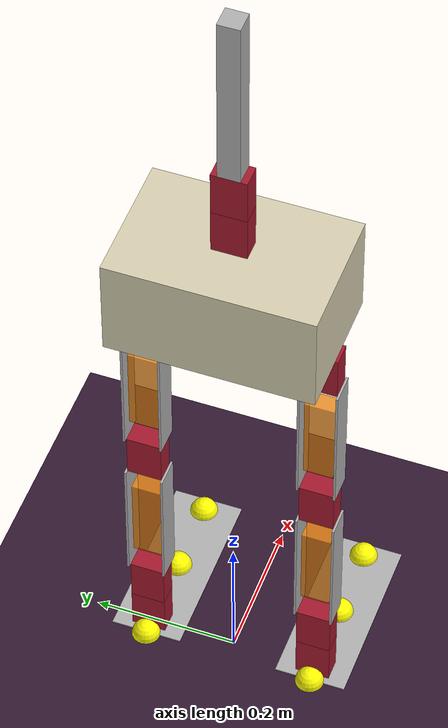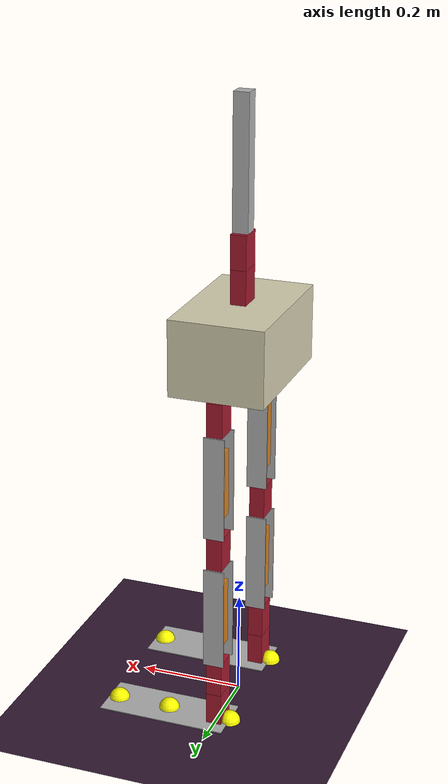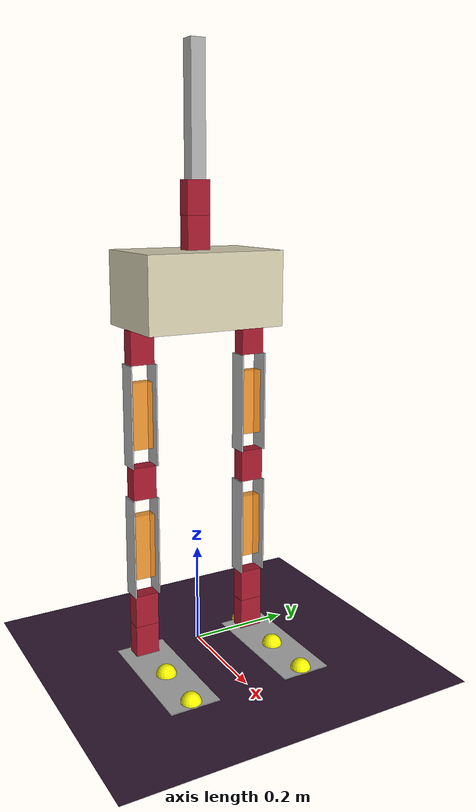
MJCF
<mujoco model="yuuki_robot_biped">

  <default>
    <site size="0.02" rgba="1 1 0 1"/>
    <joint damping="1.5" armature="0.02"/>
    <geom friction="1.15 0.005 0.0001"/>
  </default>

  <visual>
    <global offwidth="1280" offheight="960"/>
  </visual>

  <asset>
    <texture type="skybox" builtin="gradient" rgb1="1 1 1" rgb2=".6 .8 1" width="256" height="256"/>
    <texture name="grid" type="2d" builtin="checker" width="512" height="512" rgb1=".3 .1 .1" rgb2=".1 .1 .3"/>
    <material name="floor_mat" texture="grid" texrepeat="40 40"/>
    <material name="basket" rgba="0.85 0.82 0.7 1"/>
    <material name="servo" rgba="0.65 0.1 0.18 1"/>
    <material name="metal" rgba="0.7 0.7 0.7 1"/>
    <material name="lipo" rgba="0.95 0.55 0.1 0.85"/>
  </asset>

  <worldbody>
    <camera name="track_robot" mode="track" target="basket_thigh" pos="0 -2.6 1.2" fovy="48"/>
    <light pos="0 0 10" dir="0 0 -1" diffuse="0.8 0.8 0.8"/>
    <geom name="floor" type="plane" size="25 25 0.1" material="floor_mat"/>

    <!-- カゴ底面中央 = ルート原点。立位で足底が床に届く高さ -->
    <body name="basket_thigh" pos="0 0 0.66">
      <freejoint name="root"/>
      <site name="imu_site" pos="0 0 0.05"/>

      <!-- カゴ: 幅28cm(Y) × 高14.5cm(Z) × 奥行18cm(X) -->
      <geom name="basket" type="box" pos="0 0 0.0725" size="0.09 0.14 0.0725" material="basket" mass="0.5"/>

      <!-- ========== 上半身バランス棒（設計図2） ========== -->
      <body name="basket_top_roll" pos="0 0 0.145">
        <!-- 先にロール軸（X） -->
        <joint name="basket_top_roll" type="hinge" axis="1 0 0" range="-45 45" damping="2"/>
        <geom name="basket_top_roll_servo" type="box" pos="0 0 0.0325" size="0.015 0.024 0.0325" material="servo" mass="0.18" contype="0" conaffinity="0"/>

        <body name="balance_pitch" pos="0 0 0.065">
          <!-- 次にピッチ軸（Y） -->
          <joint name="balance_pitch" type="hinge" axis="0 1 0" range="-45 45" damping="2"/>
          <geom name="balance_pitch_servo" type="box" pos="0 0 0.0325" size="0.015 0.024 0.0325" material="servo" mass="0.18" contype="0" conaffinity="0"/>

          <!-- バランス棒: 高さ 25cm、断面 3cm x 3cm -->
          <body name="balance_bar" pos="0 0 0.065">
            <geom name="balance_bar" type="box" pos="0 0 0.125" size="0.015 0.015 0.125" material="metal" mass="1.5"/>
          </body>
        </body>
      </body>

      <!-- ========== 左脚 (+Y) ========== -->
      <body name="left_hip" pos="0 0.12 0">
        <!-- 軸: ロール (X) — 背面図は点、側面図は線 -->
        <!-- 股ロール: 実機 LOGICAL_RANGE_HIP1（-30°〜90°） -->
        <joint name="left_hip_roll" type="hinge" axis="1 0 0" range="-30 90" damping="2"/>
        <geom name="left_hip_roll_servo" type="box" pos="0 0 -0.0325" size="0.015 0.024 0.0325" material="servo" mass="0.18" contype="0" conaffinity="0"/>

        <body name="left_thigh" pos="0 0 -0.065">
          <!-- 軸: ピッチ (Y) -->
          <!-- 股ピッチ論理角 -20°〜120° → MuJoCo（論理-90°）-110°〜30° -->
          <joint name="left_hip_pitch" type="hinge" axis="0 1 0" range="-110 30" damping="2"/>
          <!-- 腿板×2: 板面は X-Z、厚み 3mm は Y。サーボ幅 48mm の両脇に配置 -->
          <geom name="left_thigh_plate_outer" type="box" pos="0 0.0255 -0.10" size="0.02 0.0015 0.10" material="metal" mass="0.063"/>
          <geom name="thigh_link" type="box" pos="0 -0.0255 -0.10" size="0.02 0.0015 0.10" material="metal" mass="0.063"/>
          <geom name="left_thigh_lipo" type="box" pos="0 0 -0.10" size="0.012 0.02 0.065" material="lipo" mass="0.302" contype="0" conaffinity="0"/>

          <body name="left_knee" pos="0 0 -0.20">
            <!-- 膝: 真下 0°、後方屈曲 +（論理 0°〜100°） -->
            <joint name="left_knee_pitch" type="hinge" axis="0 1 0" range="0 100" damping="2"/>
            <geom name="left_knee_servo" type="box" pos="0 0 -0.0325" size="0.015 0.024 0.0325" material="servo" mass="0.18" contype="0" conaffinity="0"/>

            <body name="left_shin" pos="0 0 -0.065">
              <geom name="left_shin_plate_outer" type="box" pos="0 0.0255 -0.10" size="0.02 0.0015 0.10" material="metal" mass="0.063"/>
              <geom name="shank_link" type="box" pos="0 -0.0255 -0.10" size="0.02 0.0015 0.10" material="metal" mass="0.063"/>
              <geom name="left_shin_lipo" type="box" pos="0 0 -0.10" size="0.012 0.02 0.065" material="lipo" mass="0.302" contype="0" conaffinity="0"/>

              <body name="left_ankle_pitch" pos="0 0 -0.20">
                <!-- 足首ピッチ: 背屈 -20°、底屈 +90°（論理角） -->
                <joint name="left_ankle_pitch" type="hinge" axis="0 1 0" range="-20 90" damping="2"/>
                <geom name="left_ankle_pitch_servo" type="box" pos="0 0 -0.0325" size="0.015 0.024 0.0325" material="servo" mass="0.18" contype="0" conaffinity="0"/>

                <body name="left_ankle_roll" pos="0 0 -0.065">
                  <joint name="left_ankle_roll" type="hinge" axis="1 0 0" range="-20 20" damping="2"/>
                  <geom name="left_ankle_roll_servo" type="box" pos="0 0 -0.0325" size="0.015 0.024 0.0325" material="servo" mass="0.18" contype="0" conaffinity="0"/>

                  <body name="left_sole" pos="0 0 -0.065">
                    <site name="foot_site" pos="0.10 0 0.001"/>
                    <site name="heel_bottom_site" pos="-0.025 0 0"/>
                    <site name="toe_bottom_site" pos="0.205 0 0"/>
                    <geom name="foot_plate" type="box" pos="0.10 0 0.001" size="0.125 0.05 0.001" material="metal" mass="0.226"/>
                  </body>
                </body>
              </body>
            </body>
          </body>
        </body>
      </body>

      <!-- ========== 右脚 (-Y) ========== -->
      <body name="right_hip" pos="0 -0.12 0">
        <joint name="right_hip_roll" type="hinge" axis="1 0 0" range="-30 90" damping="2"/>
        <geom name="right_hip_roll_servo" type="box" pos="0 0 -0.0325" size="0.015 0.024 0.0325" material="servo" mass="0.18" contype="0" conaffinity="0"/>

        <body name="right_thigh" pos="0 0 -0.065">
          <joint name="right_hip_pitch" type="hinge" axis="0 1 0" range="-110 30" damping="2"/>
          <geom name="right_thigh_plate_outer" type="box" pos="0 -0.0255 -0.10" size="0.02 0.0015 0.10" material="metal" mass="0.063"/>
          <geom name="right_thigh_link" type="box" pos="0 0.0255 -0.10" size="0.02 0.0015 0.10" material="metal" mass="0.063"/>
          <geom name="right_thigh_lipo" type="box" pos="0 0 -0.10" size="0.012 0.02 0.065" material="lipo" mass="0.302" contype="0" conaffinity="0"/>

          <body name="right_knee" pos="0 0 -0.20">
            <joint name="right_knee_pitch" type="hinge" axis="0 1 0" range="0 100" damping="2"/>
            <geom name="right_knee_servo" type="box" pos="0 0 -0.0325" size="0.015 0.024 0.0325" material="servo" mass="0.18" contype="0" conaffinity="0"/>

            <body name="right_shin" pos="0 0 -0.065">
              <geom name="right_shin_plate_outer" type="box" pos="0 -0.0255 -0.10" size="0.02 0.0015 0.10" material="metal" mass="0.063"/>
              <geom name="right_shin_link" type="box" pos="0 0.0255 -0.10" size="0.02 0.0015 0.10" material="metal" mass="0.063"/>
              <geom name="right_shin_lipo" type="box" pos="0 0 -0.10" size="0.012 0.02 0.065" material="lipo" mass="0.302" contype="0" conaffinity="0"/>

              <body name="right_ankle_pitch" pos="0 0 -0.20">
                <joint name="right_ankle_pitch" type="hinge" axis="0 1 0" range="-20 90" damping="2"/>
                <geom name="right_ankle_pitch_servo" type="box" pos="0 0 -0.0325" size="0.015 0.024 0.0325" material="servo" mass="0.18" contype="0" conaffinity="0"/>

                <body name="right_ankle_roll" pos="0 0 -0.065">
                  <joint name="right_ankle_roll" type="hinge" axis="1 0 0" range="-20 20" damping="2"/>
                  <geom name="right_ankle_roll_servo" type="box" pos="0 0 -0.0325" size="0.015 0.024 0.0325" material="servo" mass="0.18" contype="0" conaffinity="0"/>

                  <body name="right_sole" pos="0 0 -0.065">
                    <site name="right_foot_site" pos="0.10 0 0.001"/>
                    <site name="right_heel_bottom_site" pos="-0.025 0 0"/>
                    <site name="right_toe_bottom_site" pos="0.205 0 0"/>
                    <geom name="right_foot_plate" type="box" pos="0.10 0 0.001" size="0.125 0.05 0.001" material="metal" mass="0.226"/>
                  </body>
                </body>
              </body>
            </body>
          </body>
        </body>
      </body>
    </body>
  </worldbody>

  <actuator>
    <!-- ctrlrange はラジアン。forcerange は RDS51150（150 kg·cm ≈ 14.7 N·m）飽和、全軸共通 -->
    <position name="left_hip_roll_motor" joint="left_hip_roll" kp="85" kv="12" ctrlrange="-0.524 1.571" forcelimited="true" forcerange="-14.7 14.7"/>
    <position name="left_hip_pitch_motor" joint="left_hip_pitch" kp="85" kv="12" ctrlrange="-1.919 0.524" forcelimited="true" forcerange="-14.7 14.7"/>
    <position name="left_knee_pitch_motor" joint="left_knee_pitch" kp="120" kv="14" ctrlrange="0 1.745" forcelimited="true" forcerange="-14.7 14.7"/>
    <position name="left_ankle_pitch_motor" joint="left_ankle_pitch" kp="70" kv="10" ctrlrange="-0.349 1.571" forcelimited="true" forcerange="-14.7 14.7"/>
    <position name="left_ankle_roll_motor" joint="left_ankle_roll" kp="50" kv="8" ctrlrange="-0.349 0.349" forcelimited="true" forcerange="-14.7 14.7"/>

    <position name="right_hip_roll_motor" joint="right_hip_roll" kp="85" kv="12" ctrlrange="-0.524 1.571" forcelimited="true" forcerange="-14.7 14.7"/>
    <position name="right_hip_pitch_motor" joint="right_hip_pitch" kp="85" kv="12" ctrlrange="-1.919 0.524" forcelimited="true" forcerange="-14.7 14.7"/>
    <position name="right_knee_pitch_motor" joint="right_knee_pitch" kp="120" kv="14" ctrlrange="0 1.745" forcelimited="true" forcerange="-14.7 14.7"/>
    <position name="right_ankle_pitch_motor" joint="right_ankle_pitch" kp="70" kv="10" ctrlrange="-0.349 1.571" forcelimited="true" forcerange="-14.7 14.7"/>
    <position name="right_ankle_roll_motor" joint="right_ankle_roll" kp="50" kv="8" ctrlrange="-0.349 0.349" forcelimited="true" forcerange="-14.7 14.7"/>

    <position name="basket_top_roll_motor" joint="basket_top_roll" kp="85" kv="12" ctrlrange="-0.785 0.785" forcelimited="true" forcerange="-14.7 14.7"/>
    <position name="balance_pitch_motor" joint="balance_pitch" kp="85" kv="12" ctrlrange="-0.785 0.785" forcelimited="true" forcerange="-14.7 14.7"/>
  </actuator>

  <sensor>
    <gyro name="imu_gyro" site="imu_site"/>
    <framezaxis name="imu_zaxis" objtype="site" objname="imu_site"/>
    <framexaxis name="foot_xaxis" objtype="site" objname="foot_site"/>
    <framezaxis name="foot_zaxis" objtype="site" objname="foot_site"/>
    <framepos name="toe_pos" objtype="site" objname="toe_bottom_site"/>
  </sensor>

  <!-- 立位: 全関節 MuJoCo 0° ≒ 論理角 hip2=60°, knee=30°, heel=-30° -->
  <keyframe>
    <key name="stand"
      qpos="0 0 0.66 1 0 0 0  0 0 0 0 0  0 0 0 0 0  0 0"
      ctrl="0 0 0 0 0  0 0 0 0 0  0 0"/>
  </keyframe>
</mujoco>
